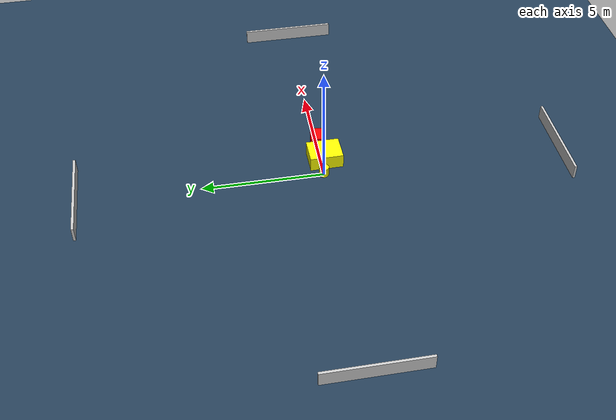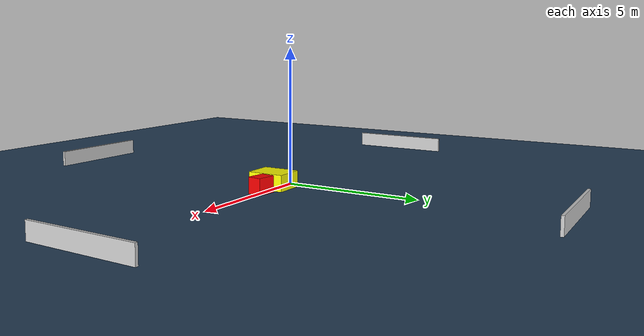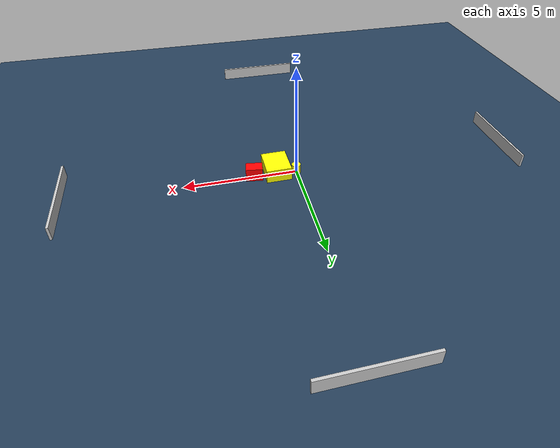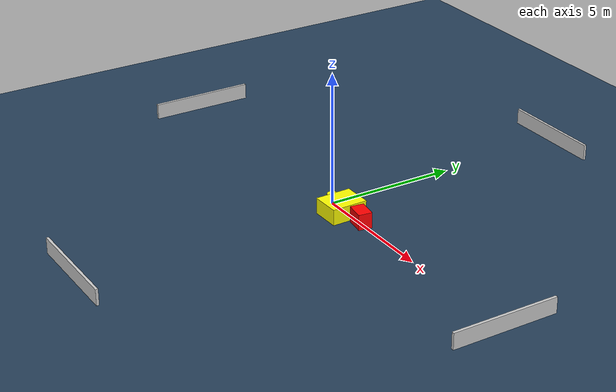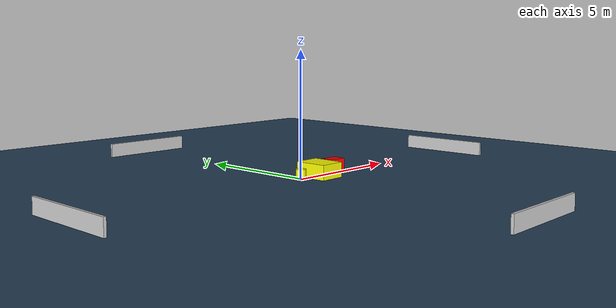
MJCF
<?xml version="1.0" ?>
<mujoco model="generated_environment">
  <option timestep="0.01" integrator="RK4" cone="elliptic"/>
  <default>
    <geom density="1"/>
  </default>
  <asset>
    <texture builtin="gradient" height="3072" name="skybox" rgb1="0.3 0.5 0.7" rgb2="0 0 0" type="skybox" width="512"/>
    <texture builtin="checker" height="300" name="groundplane" rgb1="0.2 0.3 0.4" rgb2="0.1 0.2 0.3" type="2d" width="300"/>
    <material name="groundplane" reflectance="0.2" texrepeat="5 5" texture="groundplane"/>
  </asset>
  <worldbody>
    <light dir="0 0 -1" directional="true" pos="0 0 1.5"/>
    <geom condim="3" friction="0.5 0.005 0.001" material="groundplane" name="floor" pos="0 0 0" size="0 0 0.05" type="plane"/>
    <body name="walls">
      <geom name="wall_1" condim="4" pos="-10.0 0.0 0.3" rgba="0.800000011920929 0.800000011920929 0.800000011920929 1.0" size="0.05 2.0 0.3" type="box"/>
      <geom name="wall_2" condim="4" pos="10.0 0.0 0.3" rgba="0.800000011920929 0.800000011920929 0.800000011920929 1.0" size="0.05 2.0 0.3" type="box"/>
      <geom name="wall_3" condim="4" pos="0.0 -10.0 0.3" rgba="0.800000011920929 0.800000011920929 0.800000011920929 1.0" size="2.0 0.05 0.3" type="box"/>
      <geom name="wall_4" condim="4" pos="0.0 10.0 0.3" rgba="0.800000011920929 0.800000011920929 0.800000011920929 1.0" size="2.0 0.05 0.3" type="box"/>
    </body>
    <body name="robot">
      <joint name="joint_x" type="slide" pos="0 0 0" axis="1 0 0"/>
      <joint name="joint_y" type="slide" pos="0 0 0" axis="0 1 0"/>
      <geom name="robot" type="cylinder" pos="0.0 0.0 0.2" size="0.2 0.2 0.0" mass="5.0" friction="1.0 0.005 0.0001" condim="4" rgba="1.0 1.0 0.0 1.0"/>
    </body>
    <body name="obstacle_1_movable">
      <geom name="obstacle_1_movable" condim="4" pos="0.8750454300010091 -0.17652465061720415 0.3" euler="0 0 180.90366873980568" friction="0.0 0.005 0.001" rgba="1.0 1.0 0.0 1.0" size="0.5528260944757301 0.6843082610376998 0.3" type="box" mass="0.1"/>
      <joint type="free"/>
    </body>
    <body name="obstacle_2_static">
      <geom name="obstacle_2_static" condim="4" pos="1.8898904197542035 -0.009980479758540306 0.3" euler="0 0 352.1428299137164" friction="0.0 0.005 0.001" rgba="1.0 0.0 0.0 1.0" size="0.3635993381210272 0.2563813053328622 0.3" type="box"/>
    </body>
  </worldbody>
  <actuator>
    <motor name="actuator_x" joint="joint_x" gear="1" ctrlrange="-1 1"/>
    <motor name="actuator_y" joint="joint_y" gear="1" ctrlrange="-1 1"/>
  </actuator>
</mujoco>
